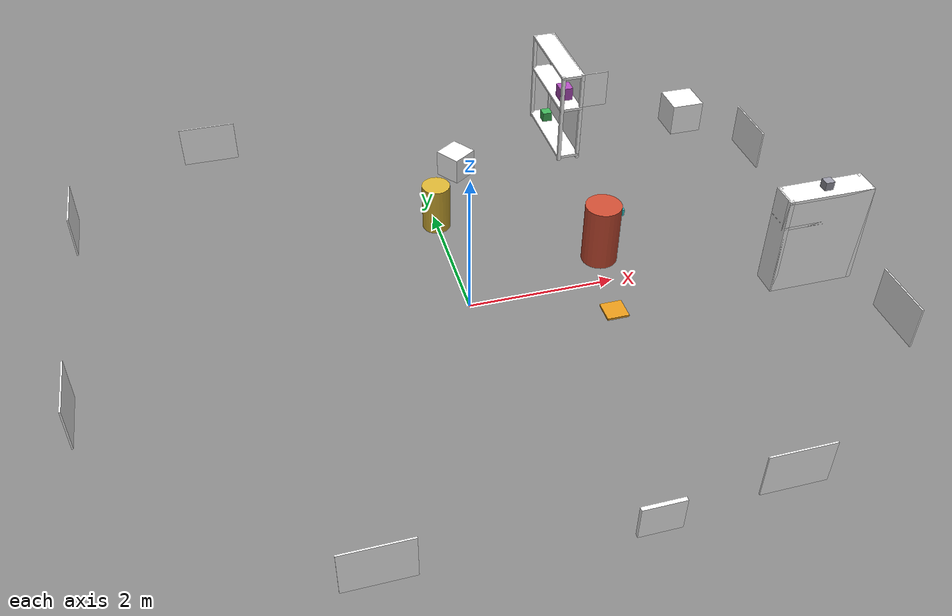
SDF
<sdf version="1.9">
 <world name="room">
  <model name="ground_plane">
   <static>true</static>
   <link name="link">
    <collision name="collision">
     <geometry><plane><normal>0 0 1</normal><size>100 100</size></plane></geometry>
     <surface><friction><ode><mu>1.0</mu><mu2>1.0</mu2></ode></friction></surface>
    </collision>
   </link>
  </model>
  <model name="posters">
   <static>true</static>
   <link name="link">
    <visual name="poster_0">
     <pose>4.94 -2.0 0.55 0 0 0</pose>
     <geometry><box><size>0.02 0.8 0.6</size></box></geometry>
     <material>
      <ambient>1 1 1 1</ambient>
      <diffuse>1 1 1 1</diffuse>
      <specular>0.05 0.05 0.05 1</specular>
      <pbr>
       <metal>
        <albedo_map>model://room_materials/materials/textures/poster1.png</albedo_map>
        <metalness>0.0</metalness>
        <roughness>0.9</roughness>
       </metal>
      </pbr>
     </material>
    </visual>
    <visual name="poster_1">
     <pose>4.94 2.0 0.55 0 0 0</pose>
     <geometry><box><size>0.02 0.8 0.6</size></box></geometry>
     <material>
      <ambient>1 1 1 1</ambient>
      <diffuse>1 1 1 1</diffuse>
      <specular>0.05 0.05 0.05 1</specular>
      <pbr>
       <metal>
        <albedo_map>model://room_materials/materials/textures/poster2.png</albedo_map>
        <metalness>0.0</metalness>
        <roughness>0.9</roughness>
       </metal>
      </pbr>
     </material>
    </visual>
    <visual name="poster_2">
     <pose>-4.94 -1.0 0.55 0 0 0</pose>
     <geometry><box><size>0.02 0.8 0.6</size></box></geometry>
     <material>
      <ambient>1 1 1 1</ambient>
      <diffuse>1 1 1 1</diffuse>
      <specular>0.05 0.05 0.05 1</specular>
      <pbr>
       <metal>
        <albedo_map>model://room_materials/materials/textures/poster3.png</albedo_map>
        <metalness>0.0</metalness>
        <roughness>0.9</roughness>
       </metal>
      </pbr>
     </material>
    </visual>
    <visual name="poster_3">
     <pose>-4.94 2.5 0.55 0 0 0</pose>
     <geometry><box><size>0.02 0.8 0.6</size></box></geometry>
     <material>
      <ambient>1 1 1 1</ambient>
      <diffuse>1 1 1 1</diffuse>
      <specular>0.05 0.05 0.05 1</specular>
      <pbr>
       <metal>
        <albedo_map>model://room_materials/materials/textures/poster4.png</albedo_map>
        <metalness>0.0</metalness>
        <roughness>0.9</roughness>
       </metal>
      </pbr>
     </material>
    </visual>
    <visual name="poster_4">
     <pose>-3.0 3.94 0.55 0 0 1.5708</pose>
     <geometry><box><size>0.02 0.8 0.6</size></box></geometry>
     <material>
      <ambient>1 1 1 1</ambient>
      <diffuse>1 1 1 1</diffuse>
      <specular>0.05 0.05 0.05 1</specular>
      <pbr>
       <metal>
        <albedo_map>model://room_materials/materials/textures/poster5.png</albedo_map>
        <metalness>0.0</metalness>
        <roughness>0.9</roughness>
       </metal>
      </pbr>
     </material>
    </visual>
    <visual name="poster_5">
     <pose>3.0 3.94 0.55 0 0 1.5708</pose>
     <geometry><box><size>0.02 0.8 0.6</size></box></geometry>
     <material>
      <ambient>1 1 1 1</ambient>
      <diffuse>1 1 1 1</diffuse>
      <specular>0.05 0.05 0.05 1</specular>
      <pbr>
       <metal>
        <albedo_map>model://room_materials/materials/textures/poster6.png</albedo_map>
        <metalness>0.0</metalness>
        <roughness>0.9</roughness>
       </metal>
      </pbr>
     </material>
    </visual>
    <visual name="poster_6">
     <pose>-2.0 -3.94 0.55 0 0 1.5708</pose>
     <geometry><box><size>0.02 0.8 0.6</size></box></geometry>
     <material>
      <ambient>1 1 1 1</ambient>
      <diffuse>1 1 1 1</diffuse>
      <specular>0.05 0.05 0.05 1</specular>
      <pbr>
       <metal>
        <albedo_map>model://room_materials/materials/textures/poster7.png</albedo_map>
        <metalness>0.0</metalness>
        <roughness>0.9</roughness>
       </metal>
      </pbr>
     </material>
    </visual>
    <visual name="poster_7">
     <pose>2.5 -3.94 0.55 0 0 1.5708</pose>
     <geometry><box><size>0.02 0.8 0.6</size></box></geometry>
     <material>
      <ambient>1 1 1 1</ambient>
      <diffuse>1 1 1 1</diffuse>
      <specular>0.05 0.05 0.05 1</specular>
      <pbr>
       <metal>
        <albedo_map>model://room_materials/materials/textures/poster8.png</albedo_map>
        <metalness>0.0</metalness>
        <roughness>0.9</roughness>
       </metal>
      </pbr>
     </material>
    </visual>
   </link>
  </model>
  <model name="crate_0">
   <static>true</static>
   <pose>4.5 3.4 0.25 0 0 0.0</pose>
   <link name="link">
    <collision name="collision"><geometry><box><size>0.5 0.5 0.5</size></box></geometry></collision>
    <visual name="visual">
     <geometry><box><size>0.5 0.5 0.5</size></box></geometry>
     <material>
      <ambient>1 1 1 1</ambient>
      <diffuse>1 1 1 1</diffuse>
      <specular>0.05 0.05 0.05 1</specular>
      <pbr>
       <metal>
        <albedo_map>model://room_materials/materials/textures/crate.png</albedo_map>
        <metalness>0.0</metalness>
        <roughness>0.9</roughness>
       </metal>
      </pbr>
     </material>
    </visual>
   </link>
  </model>
  <model name="crate_2">
   <static>true</static>
   <pose>0.6 3.0 0.2 0 0 0.6</pose>
   <link name="link">
    <collision name="collision"><geometry><box><size>0.4 0.4 0.4</size></box></geometry></collision>
    <visual name="visual">
     <geometry><box><size>0.4 0.4 0.4</size></box></geometry>
     <material>
      <ambient>1 1 1 1</ambient>
      <diffuse>1 1 1 1</diffuse>
      <specular>0.05 0.05 0.05 1</specular>
      <pbr>
       <metal>
        <albedo_map>model://room_materials/materials/textures/crate.png</albedo_map>
        <metalness>0.0</metalness>
        <roughness>0.9</roughness>
       </metal>
      </pbr>
     </material>
    </visual>
   </link>
  </model>
  <model name="low_obstacle_0">
   <static>true</static>
   <pose>1.8 -0.6 0.015 0 0 0</pose>
   <link name="link">
    <collision name="collision"><geometry><box><size>0.3 0.3 0.03</size></box></geometry></collision>
    <visual name="visual">
     <geometry><box><size>0.3 0.3 0.03</size></box></geometry>
     <material><ambient>0.9 0.6 0.1 1</ambient><diffuse>0.9 0.6 0.1 1</diffuse></material>
    </visual>
   </link>
  </model>
  <model name="low_obstacle_2">
   <static>true</static>
   <pose>2.6 1.4 0.05 0 0 0</pose>
   <link name="link">
    <collision name="collision"><geometry><box><size>0.2 0.2 0.1</size></box></geometry></collision>
    <visual name="visual">
     <geometry><box><size>0.2 0.2 0.1</size></box></geometry>
     <material><ambient>0.2 0.8 0.8 1</ambient><diffuse>0.2 0.8 0.8 1</diffuse></material>
    </visual>
   </link>
  </model>
  <model name="shelf_1">
   <static>true</static>
   <pose>2.4 3.6 0 0 0 1.5708</pose>
   <link name="link">
    <visual name="shelf_1_leg_0">
     <pose>0.6749999999999999 0.15 0.735 0 0 0</pose>
     <geometry><box><size>0.05 0.05 1.47</size></box></geometry>
     <material>
      <ambient>1 1 1 1</ambient>
      <diffuse>1 1 1 1</diffuse>
      <specular>0.05 0.05 0.05 1</specular>
      <pbr>
       <metal>
        <albedo_map>model://room_materials/materials/textures/crate.png</albedo_map>
        <metalness>0.0</metalness>
        <roughness>0.9</roughness>
       </metal>
      </pbr>
     </material>
    </visual>
    <collision name="shelf_1_legc_0">
     <pose>0.6749999999999999 0.15 0.735 0 0 0</pose>
     <geometry><box><size>0.05 0.05 1.47</size></box></geometry>
    </collision>
    <visual name="shelf_1_leg_1">
     <pose>0.6749999999999999 -0.15 0.735 0 0 0</pose>
     <geometry><box><size>0.05 0.05 1.47</size></box></geometry>
     <material>
      <ambient>1 1 1 1</ambient>
      <diffuse>1 1 1 1</diffuse>
      <specular>0.05 0.05 0.05 1</specular>
      <pbr>
       <metal>
        <albedo_map>model://room_materials/materials/textures/crate.png</albedo_map>
        <metalness>0.0</metalness>
        <roughness>0.9</roughness>
       </metal>
      </pbr>
     </material>
    </visual>
    <collision name="shelf_1_legc_1">
     <pose>0.6749999999999999 -0.15 0.735 0 0 0</pose>
     <geometry><box><size>0.05 0.05 1.47</size></box></geometry>
    </collision>
    <visual name="shelf_1_leg_2">
     <pose>-0.6749999999999999 0.15 0.735 0 0 0</pose>
     <geometry><box><size>0.05 0.05 1.47</size></box></geometry>
     <material>
      <ambient>1 1 1 1</ambient>
      <diffuse>1 1 1 1</diffuse>
      <specular>0.05 0.05 0.05 1</specular>
      <pbr>
       <metal>
        <albedo_map>model://room_materials/materials/textures/crate.png</albedo_map>
        <metalness>0.0</metalness>
        <roughness>0.9</roughness>
       </metal>
      </pbr>
     </material>
    </visual>
    <collision name="shelf_1_legc_2">
     <pose>-0.6749999999999999 0.15 0.735 0 0 0</pose>
     <geometry><box><size>0.05 0.05 1.47</size></box></geometry>
    </collision>
    <visual name="shelf_1_leg_3">
     <pose>-0.6749999999999999 -0.15 0.735 0 0 0</pose>
     <geometry><box><size>0.05 0.05 1.47</size></box></geometry>
     <material>
      <ambient>1 1 1 1</ambient>
      <diffuse>1 1 1 1</diffuse>
      <specular>0.05 0.05 0.05 1</specular>
      <pbr>
       <metal>
        <albedo_map>model://room_materials/materials/textures/crate.png</albedo_map>
        <metalness>0.0</metalness>
        <roughness>0.9</roughness>
       </metal>
      </pbr>
     </material>
    </visual>
    <collision name="shelf_1_legc_3">
     <pose>-0.6749999999999999 -0.15 0.735 0 0 0</pose>
     <geometry><box><size>0.05 0.05 1.47</size></box></geometry>
    </collision>
    <visual name="shelf_1_board_0">
     <pose>0 0 0.06 0 0 0</pose>
     <geometry><box><size>1.4 0.35 0.04</size></box></geometry>
     <material>
      <ambient>1 1 1 1</ambient>
      <diffuse>1 1 1 1</diffuse>
      <specular>0.05 0.05 0.05 1</specular>
      <pbr>
       <metal>
        <albedo_map>model://room_materials/materials/textures/crate.png</albedo_map>
        <metalness>0.0</metalness>
        <roughness>0.9</roughness>
       </metal>
      </pbr>
     </material>
    </visual>
    <collision name="shelf_1_boardc_0">
     <pose>0 0 0.06 0 0 0</pose>
     <geometry><box><size>1.4 0.35 0.04</size></box></geometry>
    </collision>
    <visual name="shelf_1_board_1">
     <pose>0 0 0.9 0 0 0</pose>
     <geometry><box><size>1.4 0.35 0.04</size></box></geometry>
     <material>
      <ambient>1 1 1 1</ambient>
      <diffuse>1 1 1 1</diffuse>
      <specular>0.05 0.05 0.05 1</specular>
      <pbr>
       <metal>
        <albedo_map>model://room_materials/materials/textures/crate.png</albedo_map>
        <metalness>0.0</metalness>
        <roughness>0.9</roughness>
       </metal>
      </pbr>
     </material>
    </visual>
    <collision name="shelf_1_boardc_1">
     <pose>0 0 0.9 0 0 0</pose>
     <geometry><box><size>1.4 0.35 0.04</size></box></geometry>
    </collision>
    <visual name="shelf_1_board_2">
     <pose>0 0 1.45 0 0 0</pose>
     <geometry><box><size>1.4 0.35 0.04</size></box></geometry>
     <material>
      <ambient>1 1 1 1</ambient>
      <diffuse>1 1 1 1</diffuse>
      <specular>0.05 0.05 0.05 1</specular>
      <pbr>
       <metal>
        <albedo_map>model://room_materials/materials/textures/crate.png</albedo_map>
        <metalness>0.0</metalness>
        <roughness>0.9</roughness>
       </metal>
      </pbr>
     </material>
    </visual>
    <collision name="shelf_1_boardc_2">
     <pose>0 0 1.45 0 0 0</pose>
     <geometry><box><size>1.4 0.35 0.04</size></box></geometry>
    </collision>
    <visual name="shelf_1_back">
     <pose>0 -0.16499999999999998 0.735 0 0 0</pose>
     <geometry><box><size>1.4 0.02 1.47</size></box></geometry>
     <material>
      <ambient>1 1 1 1</ambient>
      <diffuse>1 1 1 1</diffuse>
      <specular>0.05 0.05 0.05 1</specular>
      <pbr>
       <metal>
        <albedo_map>model://room_materials/materials/textures/crate.png</albedo_map>
        <metalness>0.0</metalness>
        <roughness>0.9</roughness>
       </metal>
      </pbr>
     </material>
    </visual>
    <collision name="shelf_1_backc">
     <pose>0 -0.16499999999999998 0.735 0 0 0</pose>
     <geometry><box><size>1.4 0.02 1.47</size></box></geometry>
    </collision>
    <collision name="shelf_1_item_c0">
     <pose>0.4 0 0.155 0 0 0</pose>
     <geometry><box><size>0.15 0.15 0.15</size></box></geometry>
    </collision>
    <visual name="shelf_1_item_0">
     <pose>0.4 0 0.155 0 0 0</pose>
     <geometry><box><size>0.15 0.15 0.15</size></box></geometry>
     <material><ambient>0.25 0.7 0.35 1</ambient><diffuse>0.25 0.7 0.35 1</diffuse></material>
    </visual>
    <collision name="shelf_1_item_c1">
     <pose>-0.35 0 1.02 0 0 0</pose>
     <geometry><box><size>0.2 0.2 0.2</size></box></geometry>
    </collision>
    <visual name="shelf_1_item_1">
     <pose>-0.35 0 1.02 0 0 0</pose>
     <geometry><box><size>0.2 0.2 0.2</size></box></geometry>
     <material><ambient>0.7 0.3 0.75 1</ambient><diffuse>0.7 0.3 0.75 1</diffuse></material>
    </visual>
   </link>
  </model>
  <model name="shelf_2">
   <static>true</static>
   <pose>4.55 -0.6 0 0 0 0.0</pose>
   <link name="link">
    <visual name="shelf_2_leg_0">
     <pose>0.57 0.145 0.735 0 0 0</pose>
     <geometry><box><size>0.06 0.06 1.47</size></box></geometry>
     <material>
      <ambient>1 1 1 1</ambient>
      <diffuse>1 1 1 1</diffuse>
      <specular>0.05 0.05 0.05 1</specular>
      <pbr>
       <metal>
        <albedo_map>model://room_materials/materials/textures/crate.png</albedo_map>
        <metalness>0.0</metalness>
        <roughness>0.9</roughness>
       </metal>
      </pbr>
     </material>
    </visual>
    <collision name="shelf_2_legc_0">
     <pose>0.57 0.145 0.735 0 0 0</pose>
     <geometry><box><size>0.06 0.06 1.47</size></box></geometry>
    </collision>
    <visual name="shelf_2_leg_1">
     <pose>0.57 -0.145 0.735 0 0 0</pose>
     <geometry><box><size>0.06 0.06 1.47</size></box></geometry>
     <material>
      <ambient>1 1 1 1</ambient>
      <diffuse>1 1 1 1</diffuse>
      <specular>0.05 0.05 0.05 1</specular>
      <pbr>
       <metal>
        <albedo_map>model://room_materials/materials/textures/crate.png</albedo_map>
        <metalness>0.0</metalness>
        <roughness>0.9</roughness>
       </metal>
      </pbr>
     </material>
    </visual>
    <collision name="shelf_2_legc_1">
     <pose>0.57 -0.145 0.735 0 0 0</pose>
     <geometry><box><size>0.06 0.06 1.47</size></box></geometry>
    </collision>
    <visual name="shelf_2_leg_2">
     <pose>-0.57 0.145 0.735 0 0 0</pose>
     <geometry><box><size>0.06 0.06 1.47</size></box></geometry>
     <material>
      <ambient>1 1 1 1</ambient>
      <diffuse>1 1 1 1</diffuse>
      <specular>0.05 0.05 0.05 1</specular>
      <pbr>
       <metal>
        <albedo_map>model://room_materials/materials/textures/crate.png</albedo_map>
        <metalness>0.0</metalness>
        <roughness>0.9</roughness>
       </metal>
      </pbr>
     </material>
    </visual>
    <collision name="shelf_2_legc_2">
     <pose>-0.57 0.145 0.735 0 0 0</pose>
     <geometry><box><size>0.06 0.06 1.47</size></box></geometry>
    </collision>
    <visual name="shelf_2_leg_3">
     <pose>-0.57 -0.145 0.735 0 0 0</pose>
     <geometry><box><size>0.06 0.06 1.47</size></box></geometry>
     <material>
      <ambient>1 1 1 1</ambient>
      <diffuse>1 1 1 1</diffuse>
      <specular>0.05 0.05 0.05 1</specular>
      <pbr>
       <metal>
        <albedo_map>model://room_materials/materials/textures/crate.png</albedo_map>
        <metalness>0.0</metalness>
        <roughness>0.9</roughness>
       </metal>
      </pbr>
     </material>
    </visual>
    <collision name="shelf_2_legc_3">
     <pose>-0.57 -0.145 0.735 0 0 0</pose>
     <geometry><box><size>0.06 0.06 1.47</size></box></geometry>
    </collision>
    <visual name="shelf_2_board_0">
     <pose>0 0 0.06 0 0 0</pose>
     <geometry><box><size>1.2 0.35 0.04</size></box></geometry>
     <material>
      <ambient>1 1 1 1</ambient>
      <diffuse>1 1 1 1</diffuse>
      <specular>0.05 0.05 0.05 1</specular>
      <pbr>
       <metal>
        <albedo_map>model://room_materials/materials/textures/crate.png</albedo_map>
        <metalness>0.0</metalness>
        <roughness>0.9</roughness>
       </metal>
      </pbr>
     </material>
    </visual>
    <collision name="shelf_2_boardc_0">
     <pose>0 0 0.06 0 0 0</pose>
     <geometry><box><size>1.2 0.35 0.04</size></box></geometry>
    </collision>
    <visual name="shelf_2_board_1">
     <pose>0 0 0.55 0 0 0</pose>
     <geometry><box><size>1.2 0.35 0.04</size></box></geometry>
     <material>
      <ambient>1 1 1 1</ambient>
      <diffuse>1 1 1 1</diffuse>
      <specular>0.05 0.05 0.05 1</specular>
      <pbr>
       <metal>
        <albedo_map>model://room_materials/materials/textures/crate.png</albedo_map>
        <metalness>0.0</metalness>
        <roughness>0.9</roughness>
       </metal>
      </pbr>
     </material>
    </visual>
    <collision name="shelf_2_boardc_1">
     <pose>0 0 0.55 0 0 0</pose>
     <geometry><box><size>1.2 0.35 0.04</size></box></geometry>
    </collision>
    <visual name="shelf_2_board_2">
     <pose>0 0 1.05 0 0 0</pose>
     <geometry><box><size>1.2 0.35 0.04</size></box></geometry>
     <material>
      <ambient>1 1 1 1</ambient>
      <diffuse>1 1 1 1</diffuse>
      <specular>0.05 0.05 0.05 1</specular>
      <pbr>
       <metal>
        <albedo_map>model://room_materials/materials/textures/crate.png</albedo_map>
        <metalness>0.0</metalness>
        <roughness>0.9</roughness>
       </metal>
      </pbr>
     </material>
    </visual>
    <collision name="shelf_2_boardc_2">
     <pose>0 0 1.05 0 0 0</pose>
     <geometry><box><size>1.2 0.35 0.04</size></box></geometry>
    </collision>
    <visual name="shelf_2_board_3">
     <pose>0 0 1.45 0 0 0</pose>
     <geometry><box><size>1.2 0.35 0.04</size></box></geometry>
     <material>
      <ambient>1 1 1 1</ambient>
      <diffuse>1 1 1 1</diffuse>
      <specular>0.05 0.05 0.05 1</specular>
      <pbr>
       <metal>
        <albedo_map>model://room_materials/materials/textures/crate.png</albedo_map>
        <metalness>0.0</metalness>
        <roughness>0.9</roughness>
       </metal>
      </pbr>
     </material>
    </visual>
    <collision name="shelf_2_boardc_3">
     <pose>0 0 1.45 0 0 0</pose>
     <geometry><box><size>1.2 0.35 0.04</size></box></geometry>
    </collision>
    <visual name="shelf_2_back">
     <pose>0 -0.16499999999999998 0.735 0 0 0</pose>
     <geometry><box><size>1.2 0.02 1.47</size></box></geometry>
     <material>
      <ambient>1 1 1 1</ambient>
      <diffuse>1 1 1 1</diffuse>
      <specular>0.05 0.05 0.05 1</specular>
      <pbr>
       <metal>
        <albedo_map>model://room_materials/materials/textures/crate.png</albedo_map>
        <metalness>0.0</metalness>
        <roughness>0.9</roughness>
       </metal>
      </pbr>
     </material>
    </visual>
    <collision name="shelf_2_backc">
     <pose>0 -0.16499999999999998 0.735 0 0 0</pose>
     <geometry><box><size>1.2 0.02 1.47</size></box></geometry>
    </collision>
    <visual name="shelf_2_side_0">
     <pose>0.59 0 0.735 0 0 0</pose>
     <geometry><box><size>0.02 0.35 1.47</size></box></geometry>
     <material>
      <ambient>1 1 1 1</ambient>
      <diffuse>1 1 1 1</diffuse>
      <specular>0.05 0.05 0.05 1</specular>
      <pbr>
       <metal>
        <albedo_map>model://room_materials/materials/textures/crate.png</albedo_map>
        <metalness>0.0</metalness>
        <roughness>0.9</roughness>
       </metal>
      </pbr>
     </material>
    </visual>
    <collision name="shelf_2_sidec_0">
     <pose>0.59 0 0.735 0 0 0</pose>
     <geometry><box><size>0.02 0.35 1.47</size></box></geometry>
    </collision>
    <visual name="shelf_2_side_1">
     <pose>-0.59 0 0.735 0 0 0</pose>
     <geometry><box><size>0.02 0.35 1.47</size></box></geometry>
     <material>
      <ambient>1 1 1 1</ambient>
      <diffuse>1 1 1 1</diffuse>
      <specular>0.05 0.05 0.05 1</specular>
      <pbr>
       <metal>
        <albedo_map>model://room_materials/materials/textures/crate.png</albedo_map>
        <metalness>0.0</metalness>
        <roughness>0.9</roughness>
       </metal>
      </pbr>
     </material>
    </visual>
    <collision name="shelf_2_sidec_1">
     <pose>-0.59 0 0.735 0 0 0</pose>
     <geometry><box><size>0.02 0.35 1.47</size></box></geometry>
    </collision>
    <collision name="shelf_2_item_c0">
     <pose>-0.3 0 0.6400000000000001 0 0 0</pose>
     <geometry><box><size>0.14 0.14 0.14</size></box></geometry>
    </collision>
    <visual name="shelf_2_item_0">
     <pose>-0.3 0 0.6400000000000001 0 0 0</pose>
     <geometry><box><size>0.14 0.14 0.14</size></box></geometry>
     <material><ambient>0.95 0.55 0.15 1</ambient><diffuse>0.95 0.55 0.15 1</diffuse></material>
    </visual>
    <collision name="shelf_2_item_c1">
     <pose>0.25 0 1.155 0 0 0</pose>
     <geometry><box><size>0.17 0.17 0.17</size></box></geometry>
    </collision>
    <visual name="shelf_2_item_1">
     <pose>0.25 0 1.155 0 0 0</pose>
     <geometry><box><size>0.17 0.17 0.17</size></box></geometry>
     <material><ambient>0.15 0.65 0.7 1</ambient><diffuse>0.15 0.65 0.7 1</diffuse></material>
    </visual>
    <collision name="shelf_2_item_c2">
     <pose>0.0 0 1.53 0 0 0</pose>
     <geometry><box><size>0.12 0.12 0.12</size></box></geometry>
    </collision>
    <visual name="shelf_2_item_2">
     <pose>0.0 0 1.53 0 0 0</pose>
     <geometry><box><size>0.12 0.12 0.12</size></box></geometry>
     <material><ambient>0.6 0.6 0.65 1</ambient><diffuse>0.6 0.6 0.65 1</diffuse></material>
    </visual>
   </link>
  </model>
  <model name="pillar_0">
   <static>true</static>
   <pose>2.0 0.5 0.45 0 0 0</pose>
   <link name="link">
    <collision name="collision">
     <geometry><cylinder><radius>0.25</radius><length>0.9</length></cylinder></geometry>
    </collision>
    <visual name="visual">
     <geometry><cylinder><radius>0.25</radius><length>0.9</length></cylinder></geometry>
     <material><ambient>0.8 0.3 0.2 1</ambient><diffuse>0.8 0.3 0.2 1</diffuse></material>
    </visual>
   </link>
  </model>
  <model name="pillar_2">
   <static>true</static>
   <pose>0.0 1.8 0.35 0 0 0</pose>
   <link name="link">
    <collision name="collision">
     <geometry><cylinder><radius>0.2</radius><length>0.7</length></cylinder></geometry>
    </collision>
    <visual name="visual">
     <geometry><cylinder><radius>0.2</radius><length>0.7</length></cylinder></geometry>
     <material><ambient>0.85 0.7 0.2 1</ambient><diffuse>0.85 0.7 0.2 1</diffuse></material>
    </visual>
   </link>
  </model>
  <model name="dock_station">
   <static>true</static>
   <link name="link">
    <visual name="dock_panel">
     <pose>1.0 -3.9250000000000003 0.225 0 0 0</pose>
     <geometry><box><size>0.52 0.05 0.45</size></box></geometry>
     <material>
      <ambient>1 1 1 1</ambient>
      <diffuse>1 1 1 1</diffuse>
      <specular>0.05 0.05 0.05 1</specular>
      <pbr>
       <metal>
        <albedo_map>model://room_materials/materials/textures/dock_body.png</albedo_map>
        <metalness>0.0</metalness>
        <roughness>0.9</roughness>
       </metal>
      </pbr>
     </material>
    </visual>
    <collision name="dock_panel_c">
     <pose>1.0 -3.9250000000000003 0.225 0 0 0</pose>
     <geometry><box><size>0.52 0.05 0.45</size></box></geometry>
    </collision>
    <visual name="dock_marker_1">
     <pose>0.84 -3.898 0.31 0 0 0</pose>
     <geometry><box><size>0.14 0.008 0.14</size></box></geometry>
     <material>
      <ambient>1 1 1 1</ambient>
      <diffuse>1 1 1 1</diffuse>
      <specular>0.05 0.05 0.05 1</specular>
      <pbr>
       <metal>
        <albedo_map>model://room_materials/materials/textures/dock_marker_1.png</albedo_map>
        <metalness>0.0</metalness>
        <roughness>0.9</roughness>
       </metal>
      </pbr>
     </material>
    </visual>
    <visual name="dock_marker_0">
     <pose>1.0 -3.898 0.31 0 0 0</pose>
     <geometry><box><size>0.14 0.008 0.14</size></box></geometry>
     <material>
      <ambient>1 1 1 1</ambient>
      <diffuse>1 1 1 1</diffuse>
      <specular>0.05 0.05 0.05 1</specular>
      <pbr>
       <metal>
        <albedo_map>model://room_materials/materials/textures/dock_marker_0.png</albedo_map>
        <metalness>0.0</metalness>
        <roughness>0.9</roughness>
       </metal>
      </pbr>
     </material>
    </visual>
    <visual name="dock_marker_2">
     <pose>1.16 -3.898 0.31 0 0 0</pose>
     <geometry><box><size>0.14 0.008 0.14</size></box></geometry>
     <material>
      <ambient>1 1 1 1</ambient>
      <diffuse>1 1 1 1</diffuse>
      <specular>0.05 0.05 0.05 1</specular>
      <pbr>
       <metal>
        <albedo_map>model://room_materials/materials/textures/dock_marker_2.png</albedo_map>
        <metalness>0.0</metalness>
        <roughness>0.9</roughness>
       </metal>
      </pbr>
     </material>
    </visual>
    <visual name="dock_plate_0">
     <pose>0.945 -3.72 0.02 0 0 0</pose>
     <geometry><box><size>0.075 0.1 0.04</size></box></geometry>
     <material>
      <ambient>0.72 0.45 0.2 1</ambient>
      <diffuse>0.72 0.45 0.2 1</diffuse>
      <specular>0.3 0.3 0.3 1</specular>
     </material>
    </visual>
    <collision name="dock_plate_0_c">
     <pose>0.945 -3.72 0.02 0 0 0</pose>
     <geometry><box><size>0.075 0.1 0.04</size></box></geometry>
    </collision>
    <visual name="dock_plate_1">
     <pose>1.055 -3.72 0.02 0 0 0</pose>
     <geometry><box><size>0.075 0.1 0.04</size></box></geometry>
     <material>
      <ambient>0.72 0.45 0.2 1</ambient>
      <diffuse>0.72 0.45 0.2 1</diffuse>
      <specular>0.3 0.3 0.3 1</specular>
     </material>
    </visual>
    <collision name="dock_plate_1_c">
     <pose>1.055 -3.72 0.02 0 0 0</pose>
     <geometry><box><size>0.075 0.1 0.04</size></box></geometry>
    </collision>
   </link>
  </model>
 </world>
</sdf>
